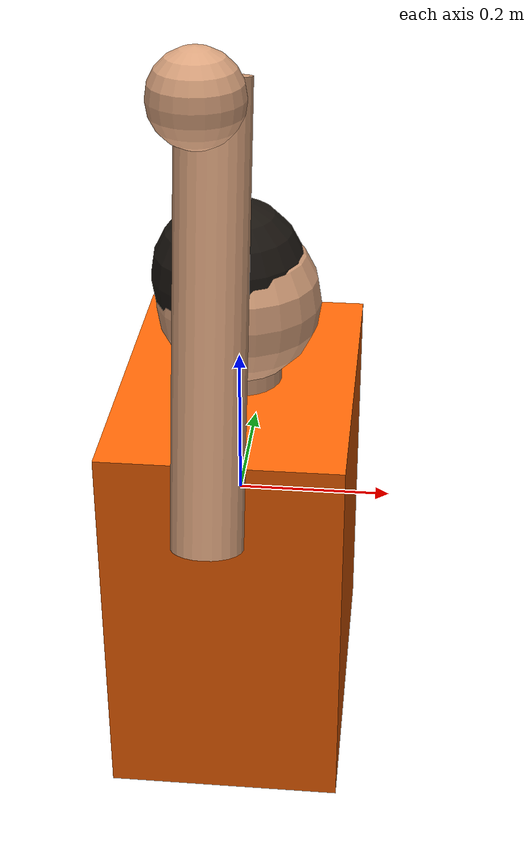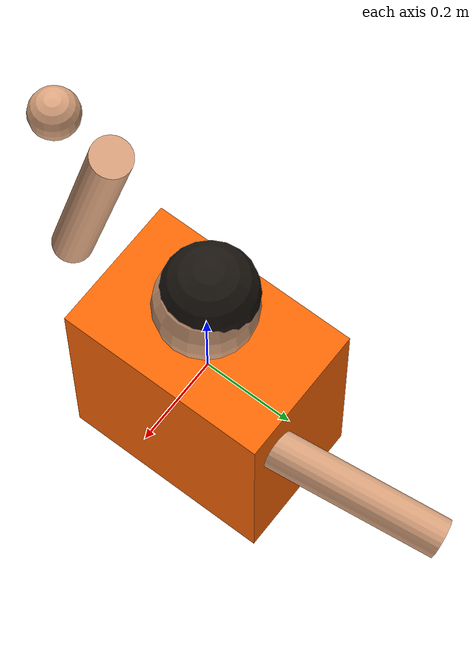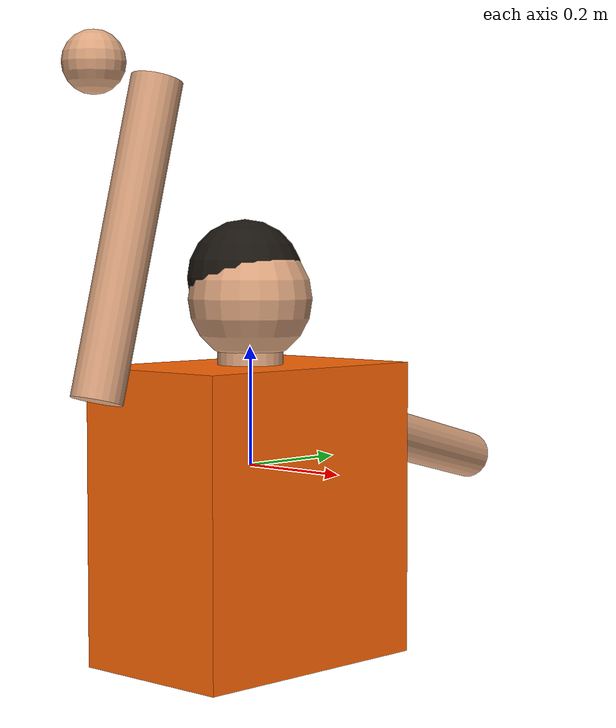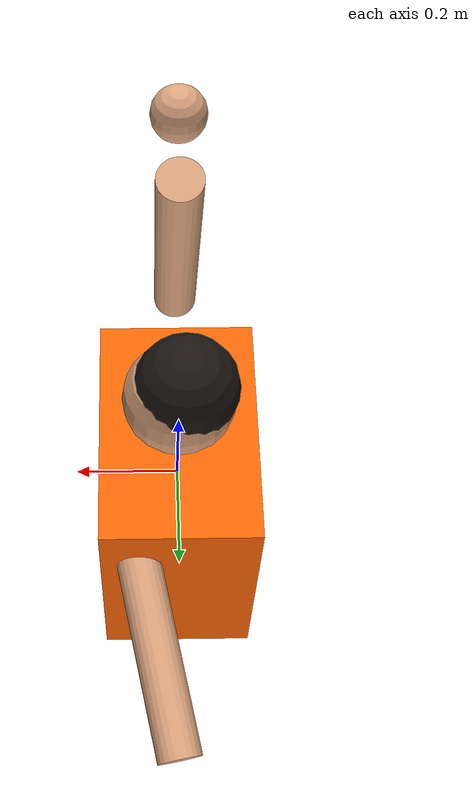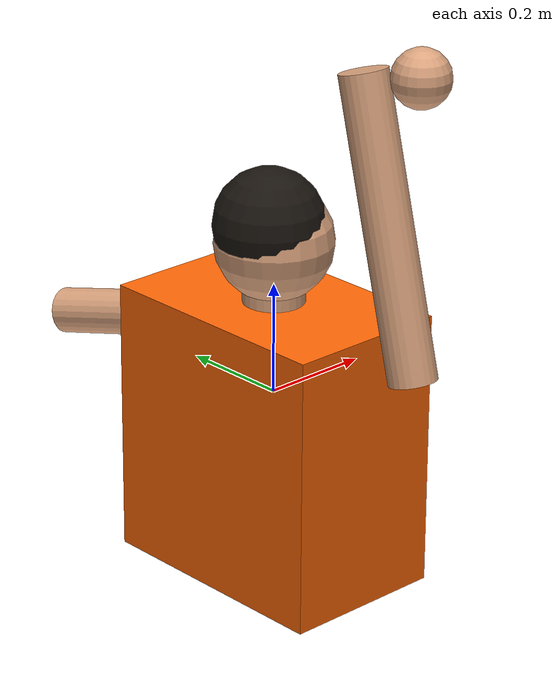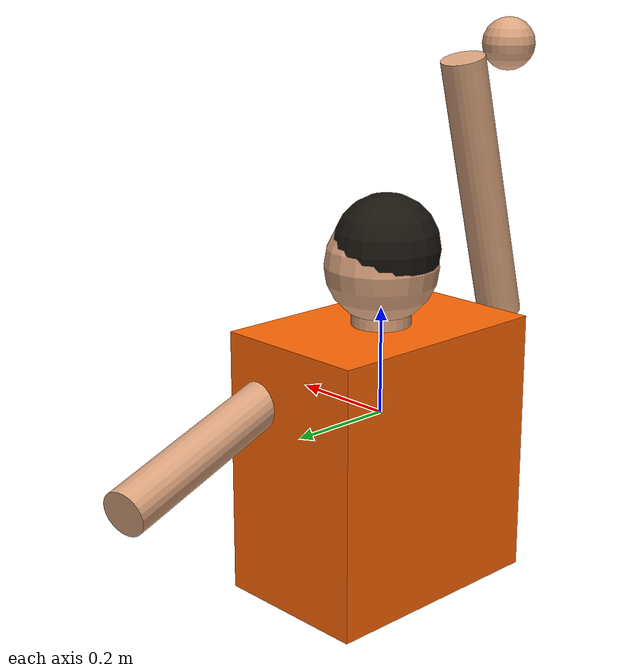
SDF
<?xml version="1.0" ?>
<sdf version="1.9">
  <model name="victim">
    <static>true</static>
    <link name="body">
      <!-- torso in a life jacket, mostly under water -->
      <visual name="jacket">
        <pose>0 0 -0.08 0 0 0</pose>
        <geometry><box><size>0.30 0.46 0.50</size></box></geometry>
        <material>
          <ambient>1.0 0.35 0.0 1</ambient>
          <diffuse>1.0 0.40 0.02 1</diffuse>
          <specular>0.2 0.2 0.2 1</specular>
        </material>
      </visual>
      <collision name="jacket_collision">
        <pose>0 0 -0.08 0 0 0</pose>
        <geometry><box><size>0.30 0.46 0.50</size></box></geometry>
      </collision>
      <visual name="neck">
        <pose>0 0 0.20 0 0 0</pose>
        <geometry><cylinder><radius>0.055</radius><length>0.08</length></cylinder></geometry>
        <material><ambient>0.85 0.62 0.48 1</ambient><diffuse>0.87 0.65 0.50 1</diffuse></material>
      </visual>
      <visual name="head">
        <pose>0 0 0.28 0 0 0</pose>
        <geometry><sphere><radius>0.105</radius></sphere></geometry>
        <material><ambient>0.85 0.62 0.48 1</ambient><diffuse>0.87 0.65 0.50 1</diffuse></material>
      </visual>
      <visual name="hair">
        <pose>-0.012 0 0.315 0 0 0</pose>
        <geometry><sphere><radius>0.098</radius></sphere></geometry>
        <material><ambient>0.08 0.06 0.05 1</ambient><diffuse>0.10 0.08 0.06 1</diffuse></material>
      </visual>
      <!-- raised right arm -->
      <visual name="arm_raised">
        <pose>0 -0.27 0.38 -0.25 0 0</pose>
        <geometry><cylinder><radius>0.042</radius><length>0.52</length></cylinder></geometry>
        <material><ambient>0.85 0.62 0.48 1</ambient><diffuse>0.87 0.65 0.50 1</diffuse></material>
      </visual>
      <collision name="arm_raised_collision">
        <pose>0 -0.27 0.38 -0.25 0 0</pose>
        <geometry><cylinder><radius>0.042</radius><length>0.52</length></cylinder></geometry>
      </collision>
      <visual name="hand">
        <pose>0 -0.335 0.65 0 0 0</pose>
        <geometry><sphere><radius>0.05</radius></sphere></geometry>
        <material><ambient>0.85 0.62 0.48 1</ambient><diffuse>0.87 0.65 0.50 1</diffuse></material>
      </visual>
      <!-- left arm resting on the water -->
      <visual name="arm_floating">
        <pose>0.05 0.36 0.02 1.35 0 0.2</pose>
        <geometry><cylinder><radius>0.042</radius><length>0.45</length></cylinder></geometry>
        <material><ambient>0.85 0.62 0.48 1</ambient><diffuse>0.87 0.65 0.50 1</diffuse></material>
      </visual>
    </link>
  </model>
</sdf>
